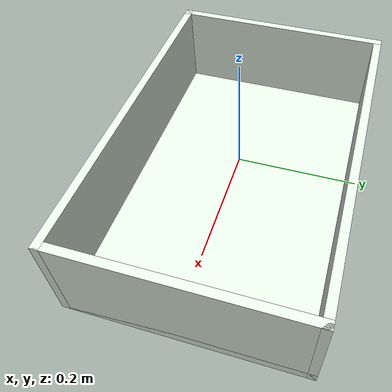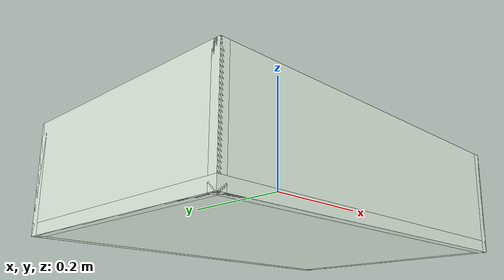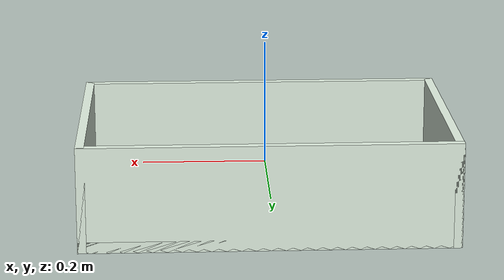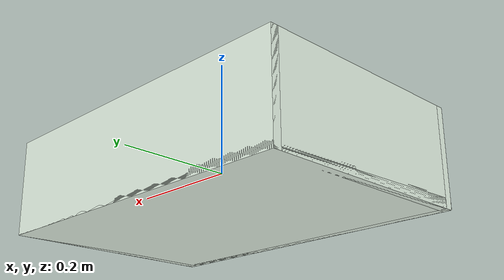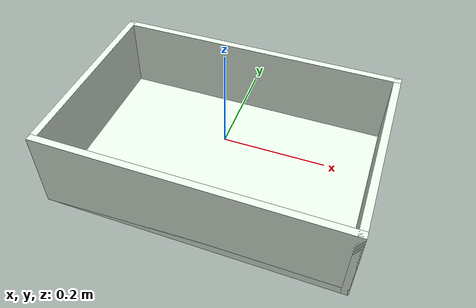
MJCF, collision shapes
<mujoco model="container_h10_60x40x17cm">
  <asset>
    <mesh name="container_h10_mesh" file="siemens/meshes/Container_H10_60x40x17cm_PR_V_NVD_01.obj" scale="1 1 1"/>
    <material name="container_h10_visual_mat" rgba="0.90 0.96 0.90 1" specular="0.25" shininess="0.18"/>
    <material name="container_h10_collision_mat" rgba="0.90 0.96 0.90 0.30" specular="0.05" shininess="0.05"/>
  </asset>

  <worldbody>
    <body>
      <body name="object">
        <inertial pos="0 0 0" mass="0.40" diaginertia="0.0050 0.0090 0.0100"/>

        <geom name="visual"
              type="mesh"
              mesh="container_h10_mesh"
              material="container_h10_visual_mat"
              quat="0.707106781 0.707106781 0 0"
              contype="0"
              conaffinity="0"
              group="1"/>

        <geom name="container_h10_col_bottom" type="box"
              pos="0 0 -0.076"
              size="0.30 0.20 0.009"
              material="container_h10_collision_mat"
              friction="1.0 0.005 0.0001"
              group="0"/>
        <geom name="container_h10_col_front" type="box"
              pos="0 -0.193 0"
              size="0.30 0.007 0.085"
              material="container_h10_collision_mat"
              friction="1.0 0.005 0.0001"
              group="0"/>
        <geom name="container_h10_col_back" type="box"
              pos="0 0.193 0"
              size="0.30 0.007 0.085"
              material="container_h10_collision_mat"
              friction="1.0 0.005 0.0001"
              group="0"/>
        <geom name="container_h10_col_left" type="box"
              pos="-0.293 0 0"
              size="0.007 0.20 0.085"
              material="container_h10_collision_mat"
              friction="1.0 0.005 0.0001"
              group="0"/>
        <geom name="container_h10_col_right" type="box"
              pos="0.293 0 0"
              size="0.007 0.20 0.085"
              material="container_h10_collision_mat"
              friction="1.0 0.005 0.0001"
              group="0"/>
      </body>
      <site rgba="0 0 0 0" size="0.005" pos="0 0 -0.085" name="bottom_site"/>
      <site rgba="0 0 0 0" size="0.005" pos="0 0 0.085" name="top_site"/>
      <site rgba="0 0 0 0" size="0.005" pos="0.30 0.20 0" name="horizontal_radius_site"/>
    </body>
  </worldbody>
</mujoco>
